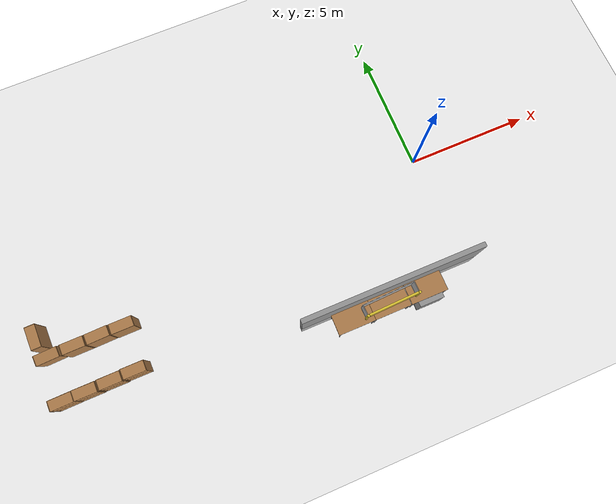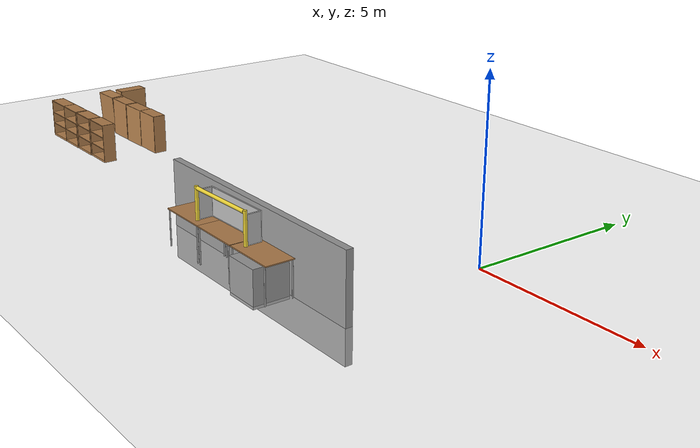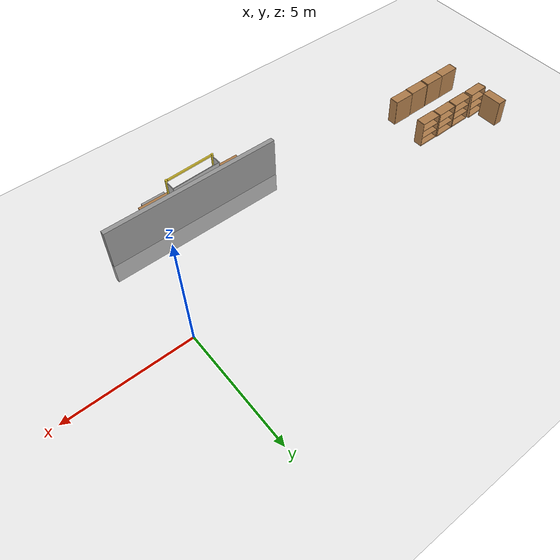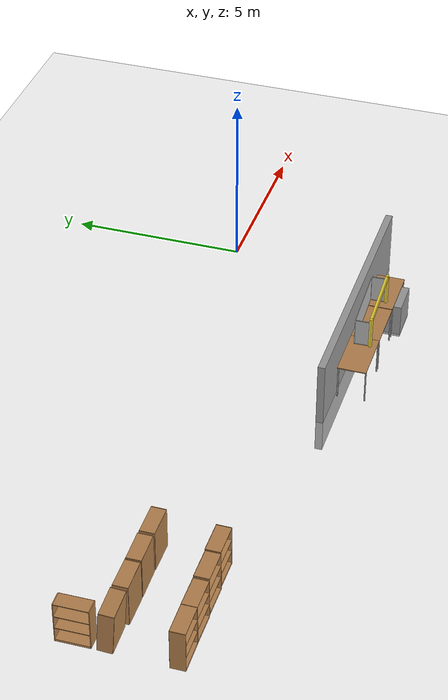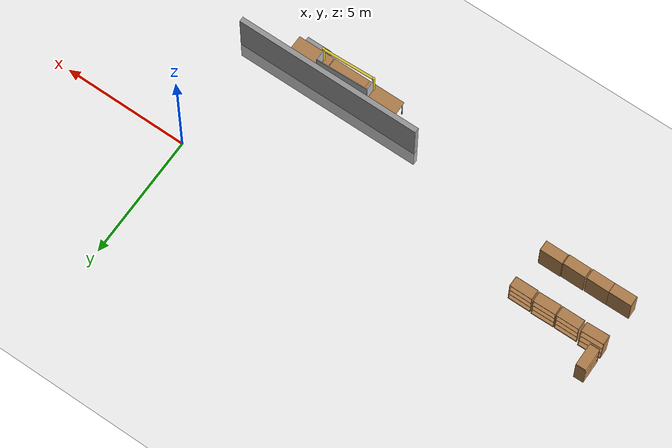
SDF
<sdf version="1.4">
 <world name="default">
  <model name="ground_plane">
   <static>1</static>
   <link name="link">
    <collision name="collision">
     <geometry><plane><normal>0 0 1</normal><size>100 100</size></plane></geometry>
     <surface><friction><ode><mu>100</mu><mu2>50</mu2></ode></friction></surface>
    </collision>
    <visual name="visual">
     <cast_shadows>0</cast_shadows>
     <geometry><plane><normal>0 0 1</normal><size>100 100</size></plane></geometry>
     <material>
      <script><uri>file://media/materials/scripts/gazebo.material</uri><name>Gazebo/Grey</name></script>
     </material>
    </visual>
    <velocity_decay><linear>0</linear><angular>0</angular></velocity_decay>
   </link>
  </model>
  <model name="bookshelf_27">
   <static>1</static>
   <link name="link">
    <inertial><mass>1</mass></inertial>
    <collision name="back">
     <pose>0 0.005 0.6 0 -0 0</pose>
     <geometry><box><size>0.9 0.01 1.2</size></box></geometry>
    </collision>
    <visual name="visual1">
     <pose>0 0.005 0.6 0 -0 0</pose>
     <geometry><box><size>0.9 0.01 1.2</size></box></geometry>
     <material>
      <script><uri>file://media/materials/scripts/gazebo.material</uri><name>Gazebo/Wood</name></script>
     </material>
    </visual>
    <collision name="left_side">
     <pose>0.45 -0.195 0.6 0 -0 0</pose>
     <geometry><box><size>0.02 0.4 1.2</size></box></geometry>
    </collision>
    <visual name="visual2">
     <pose>0.45 -0.195 0.6 0 -0 0</pose>
     <geometry><box><size>0.02 0.4 1.2</size></box></geometry>
     <material>
      <script><uri>file://media/materials/scripts/gazebo.material</uri><name>Gazebo/Wood</name></script>
     </material>
    </visual>
    <collision name="right_side">
     <pose>-0.45 -0.195 0.6 0 -0 0</pose>
     <geometry><box><size>0.02 0.4 1.2</size></box></geometry>
    </collision>
    <visual name="visual3">
     <pose>-0.45 -0.195 0.6 0 -0 0</pose>
     <geometry><box><size>0.02 0.4 1.2</size></box></geometry>
     <material>
      <script><uri>file://media/materials/scripts/gazebo.material</uri><name>Gazebo/Wood</name></script>
     </material>
    </visual>
    <collision name="bottom">
     <pose>0 -0.195 0.03 0 -0 0</pose>
     <geometry><box><size>0.88 0.4 0.06</size></box></geometry>
    </collision>
    <visual name="visual4">
     <pose>0 -0.195 0.03 0 -0 0</pose>
     <geometry><box><size>0.88 0.4 0.06</size></box></geometry>
     <material>
      <script><uri>file://media/materials/scripts/gazebo.material</uri><name>Gazebo/Wood</name></script>
     </material>
    </visual>
    <collision name="top">
     <pose>0 -0.195 1.19 0 -0 0</pose>
     <geometry><box><size>0.88 0.4 0.02</size></box></geometry>
    </collision>
    <visual name="visual5">
     <pose>0 -0.195 1.19 0 -0 0</pose>
     <geometry><box><size>0.88 0.4 0.02</size></box></geometry>
     <material>
      <script><uri>file://media/materials/scripts/gazebo.material</uri><name>Gazebo/Wood</name></script>
     </material>
    </visual>
    <collision name="low_shelf">
     <pose>0 -0.195 0.43 0 -0 0</pose>
     <geometry><box><size>0.88 0.4 0.02</size></box></geometry>
    </collision>
    <visual name="visual6">
     <pose>0 -0.195 0.43 0 -0 0</pose>
     <geometry><box><size>0.88 0.4 0.02</size></box></geometry>
     <material>
      <script><uri>file://media/materials/scripts/gazebo.material</uri><name>Gazebo/Wood</name></script>
     </material>
    </visual>
    <collision name="high_shelf">
     <pose>0 -0.195 0.8 0 -0 0</pose>
     <geometry><box><size>0.88 0.4 0.02</size></box></geometry>
    </collision>
    <visual name="visual7">
     <pose>0 -0.195 0.8 0 -0 0</pose>
     <geometry><box><size>0.88 0.4 0.02</size></box></geometry>
     <material>
      <script><uri>file://media/materials/scripts/gazebo.material</uri><name>Gazebo/Wood</name></script>
     </material>
    </visual>
    <velocity_decay><linear>0</linear><angular>0</angular></velocity_decay>
   </link>
   <pose>-15.0973 -3.47913 0 0 -0 0</pose>
  </model>
  <model name="bookshelf_29">
   <static>1</static>
   <link name="link">
    <inertial><mass>1</mass></inertial>
    <collision name="back">
     <pose>0 0.005 0.6 0 -0 0</pose>
     <geometry><box><size>0.9 0.01 1.2</size></box></geometry>
    </collision>
    <visual name="visual1">
     <pose>0 0.005 0.6 0 -0 0</pose>
     <geometry><box><size>0.9 0.01 1.2</size></box></geometry>
     <material>
      <script><uri>file://media/materials/scripts/gazebo.material</uri><name>Gazebo/Wood</name></script>
     </material>
    </visual>
    <collision name="left_side">
     <pose>0.45 -0.195 0.6 0 -0 0</pose>
     <geometry><box><size>0.02 0.4 1.2</size></box></geometry>
    </collision>
    <visual name="visual2">
     <pose>0.45 -0.195 0.6 0 -0 0</pose>
     <geometry><box><size>0.02 0.4 1.2</size></box></geometry>
     <material>
      <script><uri>file://media/materials/scripts/gazebo.material</uri><name>Gazebo/Wood</name></script>
     </material>
    </visual>
    <collision name="right_side">
     <pose>-0.45 -0.195 0.6 0 -0 0</pose>
     <geometry><box><size>0.02 0.4 1.2</size></box></geometry>
    </collision>
    <visual name="visual3">
     <pose>-0.45 -0.195 0.6 0 -0 0</pose>
     <geometry><box><size>0.02 0.4 1.2</size></box></geometry>
     <material>
      <script><uri>file://media/materials/scripts/gazebo.material</uri><name>Gazebo/Wood</name></script>
     </material>
    </visual>
    <collision name="bottom">
     <pose>0 -0.195 0.03 0 -0 0</pose>
     <geometry><box><size>0.88 0.4 0.06</size></box></geometry>
    </collision>
    <visual name="visual4">
     <pose>0 -0.195 0.03 0 -0 0</pose>
     <geometry><box><size>0.88 0.4 0.06</size></box></geometry>
     <material>
      <script><uri>file://media/materials/scripts/gazebo.material</uri><name>Gazebo/Wood</name></script>
     </material>
    </visual>
    <collision name="top">
     <pose>0 -0.195 1.19 0 -0 0</pose>
     <geometry><box><size>0.88 0.4 0.02</size></box></geometry>
    </collision>
    <visual name="visual5">
     <pose>0 -0.195 1.19 0 -0 0</pose>
     <geometry><box><size>0.88 0.4 0.02</size></box></geometry>
     <material>
      <script><uri>file://media/materials/scripts/gazebo.material</uri><name>Gazebo/Wood</name></script>
     </material>
    </visual>
    <collision name="low_shelf">
     <pose>0 -0.195 0.43 0 -0 0</pose>
     <geometry><box><size>0.88 0.4 0.02</size></box></geometry>
    </collision>
    <visual name="visual6">
     <pose>0 -0.195 0.43 0 -0 0</pose>
     <geometry><box><size>0.88 0.4 0.02</size></box></geometry>
     <material>
      <script><uri>file://media/materials/scripts/gazebo.material</uri><name>Gazebo/Wood</name></script>
     </material>
    </visual>
    <collision name="high_shelf">
     <pose>0 -0.195 0.8 0 -0 0</pose>
     <geometry><box><size>0.88 0.4 0.02</size></box></geometry>
    </collision>
    <visual name="visual7">
     <pose>0 -0.195 0.8 0 -0 0</pose>
     <geometry><box><size>0.88 0.4 0.02</size></box></geometry>
     <material>
      <script><uri>file://media/materials/scripts/gazebo.material</uri><name>Gazebo/Wood</name></script>
     </material>
    </visual>
    <velocity_decay><linear>0</linear><angular>0</angular></velocity_decay>
   </link>
   <pose>-16.0607 -1.09142 0 0 0 -1.554</pose>
  </model>
  <model name="bookshelf_30">
   <static>1</static>
   <link name="link">
    <inertial><mass>1</mass></inertial>
    <collision name="back">
     <pose>0 0.005 0.6 0 -0 0</pose>
     <geometry><box><size>0.9 0.01 1.2</size></box></geometry>
    </collision>
    <visual name="visual1">
     <pose>0 0.005 0.6 0 -0 0</pose>
     <geometry><box><size>0.9 0.01 1.2</size></box></geometry>
     <material>
      <script><uri>file://media/materials/scripts/gazebo.material</uri><name>Gazebo/Wood</name></script>
     </material>
    </visual>
    <collision name="left_side">
     <pose>0.45 -0.195 0.6 0 -0 0</pose>
     <geometry><box><size>0.02 0.4 1.2</size></box></geometry>
    </collision>
    <visual name="visual2">
     <pose>0.45 -0.195 0.6 0 -0 0</pose>
     <geometry><box><size>0.02 0.4 1.2</size></box></geometry>
     <material>
      <script><uri>file://media/materials/scripts/gazebo.material</uri><name>Gazebo/Wood</name></script>
     </material>
    </visual>
    <collision name="right_side">
     <pose>-0.45 -0.195 0.6 0 -0 0</pose>
     <geometry><box><size>0.02 0.4 1.2</size></box></geometry>
    </collision>
    <visual name="visual3">
     <pose>-0.45 -0.195 0.6 0 -0 0</pose>
     <geometry><box><size>0.02 0.4 1.2</size></box></geometry>
     <material>
      <script><uri>file://media/materials/scripts/gazebo.material</uri><name>Gazebo/Wood</name></script>
     </material>
    </visual>
    <collision name="bottom">
     <pose>0 -0.195 0.03 0 -0 0</pose>
     <geometry><box><size>0.88 0.4 0.06</size></box></geometry>
    </collision>
    <visual name="visual4">
     <pose>0 -0.195 0.03 0 -0 0</pose>
     <geometry><box><size>0.88 0.4 0.06</size></box></geometry>
     <material>
      <script><uri>file://media/materials/scripts/gazebo.material</uri><name>Gazebo/Wood</name></script>
     </material>
    </visual>
    <collision name="top">
     <pose>0 -0.195 1.19 0 -0 0</pose>
     <geometry><box><size>0.88 0.4 0.02</size></box></geometry>
    </collision>
    <visual name="visual5">
     <pose>0 -0.195 1.19 0 -0 0</pose>
     <geometry><box><size>0.88 0.4 0.02</size></box></geometry>
     <material>
      <script><uri>file://media/materials/scripts/gazebo.material</uri><name>Gazebo/Wood</name></script>
     </material>
    </visual>
    <collision name="low_shelf">
     <pose>0 -0.195 0.43 0 -0 0</pose>
     <geometry><box><size>0.88 0.4 0.02</size></box></geometry>
    </collision>
    <visual name="visual6">
     <pose>0 -0.195 0.43 0 -0 0</pose>
     <geometry><box><size>0.88 0.4 0.02</size></box></geometry>
     <material>
      <script><uri>file://media/materials/scripts/gazebo.material</uri><name>Gazebo/Wood</name></script>
     </material>
    </visual>
    <collision name="high_shelf">
     <pose>0 -0.195 0.8 0 -0 0</pose>
     <geometry><box><size>0.88 0.4 0.02</size></box></geometry>
    </collision>
    <visual name="visual7">
     <pose>0 -0.195 0.8 0 -0 0</pose>
     <geometry><box><size>0.88 0.4 0.02</size></box></geometry>
     <material>
      <script><uri>file://media/materials/scripts/gazebo.material</uri><name>Gazebo/Wood</name></script>
     </material>
    </visual>
    <velocity_decay><linear>0</linear><angular>0</angular></velocity_decay>
   </link>
   <pose>-15.9916 -2.0704 0 -0.064385 4.33681e-19 -3.10962</pose>
  </model>
  <model name="bookshelf_31">
   <static>1</static>
   <link name="link">
    <inertial><mass>1</mass></inertial>
    <collision name="back">
     <pose>0 0.005 0.6 0 -0 0</pose>
     <geometry><box><size>0.9 0.01 1.2</size></box></geometry>
    </collision>
    <visual name="visual1">
     <pose>0 0.005 0.6 0 -0 0</pose>
     <geometry><box><size>0.9 0.01 1.2</size></box></geometry>
     <material>
      <script><uri>file://media/materials/scripts/gazebo.material</uri><name>Gazebo/Wood</name></script>
     </material>
    </visual>
    <collision name="left_side">
     <pose>0.45 -0.195 0.6 0 -0 0</pose>
     <geometry><box><size>0.02 0.4 1.2</size></box></geometry>
    </collision>
    <visual name="visual2">
     <pose>0.45 -0.195 0.6 0 -0 0</pose>
     <geometry><box><size>0.02 0.4 1.2</size></box></geometry>
     <material>
      <script><uri>file://media/materials/scripts/gazebo.material</uri><name>Gazebo/Wood</name></script>
     </material>
    </visual>
    <collision name="right_side">
     <pose>-0.45 -0.195 0.6 0 -0 0</pose>
     <geometry><box><size>0.02 0.4 1.2</size></box></geometry>
    </collision>
    <visual name="visual3">
     <pose>-0.45 -0.195 0.6 0 -0 0</pose>
     <geometry><box><size>0.02 0.4 1.2</size></box></geometry>
     <material>
      <script><uri>file://media/materials/scripts/gazebo.material</uri><name>Gazebo/Wood</name></script>
     </material>
    </visual>
    <collision name="bottom">
     <pose>0 -0.195 0.03 0 -0 0</pose>
     <geometry><box><size>0.88 0.4 0.06</size></box></geometry>
    </collision>
    <visual name="visual4">
     <pose>0 -0.195 0.03 0 -0 0</pose>
     <geometry><box><size>0.88 0.4 0.06</size></box></geometry>
     <material>
      <script><uri>file://media/materials/scripts/gazebo.material</uri><name>Gazebo/Wood</name></script>
     </material>
    </visual>
    <collision name="top">
     <pose>0 -0.195 1.19 0 -0 0</pose>
     <geometry><box><size>0.88 0.4 0.02</size></box></geometry>
    </collision>
    <visual name="visual5">
     <pose>0 -0.195 1.19 0 -0 0</pose>
     <geometry><box><size>0.88 0.4 0.02</size></box></geometry>
     <material>
      <script><uri>file://media/materials/scripts/gazebo.material</uri><name>Gazebo/Wood</name></script>
     </material>
    </visual>
    <collision name="low_shelf">
     <pose>0 -0.195 0.43 0 -0 0</pose>
     <geometry><box><size>0.88 0.4 0.02</size></box></geometry>
    </collision>
    <visual name="visual6">
     <pose>0 -0.195 0.43 0 -0 0</pose>
     <geometry><box><size>0.88 0.4 0.02</size></box></geometry>
     <material>
      <script><uri>file://media/materials/scripts/gazebo.material</uri><name>Gazebo/Wood</name></script>
     </material>
    </visual>
    <collision name="high_shelf">
     <pose>0 -0.195 0.8 0 -0 0</pose>
     <geometry><box><size>0.88 0.4 0.02</size></box></geometry>
    </collision>
    <visual name="visual7">
     <pose>0 -0.195 0.8 0 -0 0</pose>
     <geometry><box><size>0.88 0.4 0.02</size></box></geometry>
     <material>
      <script><uri>file://media/materials/scripts/gazebo.material</uri><name>Gazebo/Wood</name></script>
     </material>
    </visual>
    <velocity_decay><linear>0</linear><angular>0</angular></velocity_decay>
   </link>
   <pose>-14.9992 -2.13445 0 0 0 -3.13657</pose>
  </model>
  <model name="bookshelf_32">
   <static>1</static>
   <link name="link">
    <inertial><mass>1</mass></inertial>
    <collision name="back">
     <pose>0 0.005 0.6 0 -0 0</pose>
     <geometry><box><size>0.9 0.01 1.2</size></box></geometry>
    </collision>
    <visual name="visual1">
     <pose>0 0.005 0.6 0 -0 0</pose>
     <geometry><box><size>0.9 0.01 1.2</size></box></geometry>
     <material>
      <script><uri>file://media/materials/scripts/gazebo.material</uri><name>Gazebo/Wood</name></script>
     </material>
    </visual>
    <collision name="left_side">
     <pose>0.45 -0.195 0.6 0 -0 0</pose>
     <geometry><box><size>0.02 0.4 1.2</size></box></geometry>
    </collision>
    <visual name="visual2">
     <pose>0.45 -0.195 0.6 0 -0 0</pose>
     <geometry><box><size>0.02 0.4 1.2</size></box></geometry>
     <material>
      <script><uri>file://media/materials/scripts/gazebo.material</uri><name>Gazebo/Wood</name></script>
     </material>
    </visual>
    <collision name="right_side">
     <pose>-0.45 -0.195 0.6 0 -0 0</pose>
     <geometry><box><size>0.02 0.4 1.2</size></box></geometry>
    </collision>
    <visual name="visual3">
     <pose>-0.45 -0.195 0.6 0 -0 0</pose>
     <geometry><box><size>0.02 0.4 1.2</size></box></geometry>
     <material>
      <script><uri>file://media/materials/scripts/gazebo.material</uri><name>Gazebo/Wood</name></script>
     </material>
    </visual>
    <collision name="bottom">
     <pose>0 -0.195 0.03 0 -0 0</pose>
     <geometry><box><size>0.88 0.4 0.06</size></box></geometry>
    </collision>
    <visual name="visual4">
     <pose>0 -0.195 0.03 0 -0 0</pose>
     <geometry><box><size>0.88 0.4 0.06</size></box></geometry>
     <material>
      <script><uri>file://media/materials/scripts/gazebo.material</uri><name>Gazebo/Wood</name></script>
     </material>
    </visual>
    <collision name="top">
     <pose>0 -0.195 1.19 0 -0 0</pose>
     <geometry><box><size>0.88 0.4 0.02</size></box></geometry>
    </collision>
    <visual name="visual5">
     <pose>0 -0.195 1.19 0 -0 0</pose>
     <geometry><box><size>0.88 0.4 0.02</size></box></geometry>
     <material>
      <script><uri>file://media/materials/scripts/gazebo.material</uri><name>Gazebo/Wood</name></script>
     </material>
    </visual>
    <collision name="low_shelf">
     <pose>0 -0.195 0.43 0 -0 0</pose>
     <geometry><box><size>0.88 0.4 0.02</size></box></geometry>
    </collision>
    <visual name="visual6">
     <pose>0 -0.195 0.43 0 -0 0</pose>
     <geometry><box><size>0.88 0.4 0.02</size></box></geometry>
     <material>
      <script><uri>file://media/materials/scripts/gazebo.material</uri><name>Gazebo/Wood</name></script>
     </material>
    </visual>
    <collision name="high_shelf">
     <pose>0 -0.195 0.8 0 -0 0</pose>
     <geometry><box><size>0.88 0.4 0.02</size></box></geometry>
    </collision>
    <visual name="visual7">
     <pose>0 -0.195 0.8 0 -0 0</pose>
     <geometry><box><size>0.88 0.4 0.02</size></box></geometry>
     <material>
      <script><uri>file://media/materials/scripts/gazebo.material</uri><name>Gazebo/Wood</name></script>
     </material>
    </visual>
    <velocity_decay><linear>0</linear><angular>0</angular></velocity_decay>
   </link>
   <pose>-14.0482 -2.12363 0 0 0 -3.12055</pose>
  </model>
  <model name="bookshelf_33">
   <static>1</static>
   <link name="link">
    <inertial><mass>1</mass></inertial>
    <collision name="back">
     <pose>0 0.005 0.6 0 -0 0</pose>
     <geometry><box><size>0.9 0.01 1.2</size></box></geometry>
    </collision>
    <visual name="visual1">
     <pose>0 0.005 0.6 0 -0 0</pose>
     <geometry><box><size>0.9 0.01 1.2</size></box></geometry>
     <material>
      <script><uri>file://media/materials/scripts/gazebo.material</uri><name>Gazebo/Wood</name></script>
     </material>
    </visual>
    <collision name="left_side">
     <pose>0.45 -0.195 0.6 0 -0 0</pose>
     <geometry><box><size>0.02 0.4 1.2</size></box></geometry>
    </collision>
    <visual name="visual2">
     <pose>0.45 -0.195 0.6 0 -0 0</pose>
     <geometry><box><size>0.02 0.4 1.2</size></box></geometry>
     <material>
      <script><uri>file://media/materials/scripts/gazebo.material</uri><name>Gazebo/Wood</name></script>
     </material>
    </visual>
    <collision name="right_side">
     <pose>-0.45 -0.195 0.6 0 -0 0</pose>
     <geometry><box><size>0.02 0.4 1.2</size></box></geometry>
    </collision>
    <visual name="visual3">
     <pose>-0.45 -0.195 0.6 0 -0 0</pose>
     <geometry><box><size>0.02 0.4 1.2</size></box></geometry>
     <material>
      <script><uri>file://media/materials/scripts/gazebo.material</uri><name>Gazebo/Wood</name></script>
     </material>
    </visual>
    <collision name="bottom">
     <pose>0 -0.195 0.03 0 -0 0</pose>
     <geometry><box><size>0.88 0.4 0.06</size></box></geometry>
    </collision>
    <visual name="visual4">
     <pose>0 -0.195 0.03 0 -0 0</pose>
     <geometry><box><size>0.88 0.4 0.06</size></box></geometry>
     <material>
      <script><uri>file://media/materials/scripts/gazebo.material</uri><name>Gazebo/Wood</name></script>
     </material>
    </visual>
    <collision name="top">
     <pose>0 -0.195 1.19 0 -0 0</pose>
     <geometry><box><size>0.88 0.4 0.02</size></box></geometry>
    </collision>
    <visual name="visual5">
     <pose>0 -0.195 1.19 0 -0 0</pose>
     <geometry><box><size>0.88 0.4 0.02</size></box></geometry>
     <material>
      <script><uri>file://media/materials/scripts/gazebo.material</uri><name>Gazebo/Wood</name></script>
     </material>
    </visual>
    <collision name="low_shelf">
     <pose>0 -0.195 0.43 0 -0 0</pose>
     <geometry><box><size>0.88 0.4 0.02</size></box></geometry>
    </collision>
    <visual name="visual6">
     <pose>0 -0.195 0.43 0 -0 0</pose>
     <geometry><box><size>0.88 0.4 0.02</size></box></geometry>
     <material>
      <script><uri>file://media/materials/scripts/gazebo.material</uri><name>Gazebo/Wood</name></script>
     </material>
    </visual>
    <collision name="high_shelf">
     <pose>0 -0.195 0.8 0 -0 0</pose>
     <geometry><box><size>0.88 0.4 0.02</size></box></geometry>
    </collision>
    <visual name="visual7">
     <pose>0 -0.195 0.8 0 -0 0</pose>
     <geometry><box><size>0.88 0.4 0.02</size></box></geometry>
     <material>
      <script><uri>file://media/materials/scripts/gazebo.material</uri><name>Gazebo/Wood</name></script>
     </material>
    </visual>
    <velocity_decay><linear>0</linear><angular>0</angular></velocity_decay>
   </link>
   <pose>-13.0936 -2.12751 0.018166 0 0 -3.13811</pose>
  </model>
  <model name="bookshelf_34">
   <static>1</static>
   <link name="link">
    <inertial><mass>1</mass></inertial>
    <collision name="back">
     <pose>0 0.005 0.6 0 -0 0</pose>
     <geometry><box><size>0.9 0.01 1.2</size></box></geometry>
    </collision>
    <visual name="visual1">
     <pose>0 0.005 0.6 0 -0 0</pose>
     <geometry><box><size>0.9 0.01 1.2</size></box></geometry>
     <material>
      <script><uri>file://media/materials/scripts/gazebo.material</uri><name>Gazebo/Wood</name></script>
     </material>
    </visual>
    <collision name="left_side">
     <pose>0.45 -0.195 0.6 0 -0 0</pose>
     <geometry><box><size>0.02 0.4 1.2</size></box></geometry>
    </collision>
    <visual name="visual2">
     <pose>0.45 -0.195 0.6 0 -0 0</pose>
     <geometry><box><size>0.02 0.4 1.2</size></box></geometry>
     <material>
      <script><uri>file://media/materials/scripts/gazebo.material</uri><name>Gazebo/Wood</name></script>
     </material>
    </visual>
    <collision name="right_side">
     <pose>-0.45 -0.195 0.6 0 -0 0</pose>
     <geometry><box><size>0.02 0.4 1.2</size></box></geometry>
    </collision>
    <visual name="visual3">
     <pose>-0.45 -0.195 0.6 0 -0 0</pose>
     <geometry><box><size>0.02 0.4 1.2</size></box></geometry>
     <material>
      <script><uri>file://media/materials/scripts/gazebo.material</uri><name>Gazebo/Wood</name></script>
     </material>
    </visual>
    <collision name="bottom">
     <pose>0 -0.195 0.03 0 -0 0</pose>
     <geometry><box><size>0.88 0.4 0.06</size></box></geometry>
    </collision>
    <visual name="visual4">
     <pose>0 -0.195 0.03 0 -0 0</pose>
     <geometry><box><size>0.88 0.4 0.06</size></box></geometry>
     <material>
      <script><uri>file://media/materials/scripts/gazebo.material</uri><name>Gazebo/Wood</name></script>
     </material>
    </visual>
    <collision name="top">
     <pose>0 -0.195 1.19 0 -0 0</pose>
     <geometry><box><size>0.88 0.4 0.02</size></box></geometry>
    </collision>
    <visual name="visual5">
     <pose>0 -0.195 1.19 0 -0 0</pose>
     <geometry><box><size>0.88 0.4 0.02</size></box></geometry>
     <material>
      <script><uri>file://media/materials/scripts/gazebo.material</uri><name>Gazebo/Wood</name></script>
     </material>
    </visual>
    <collision name="low_shelf">
     <pose>0 -0.195 0.43 0 -0 0</pose>
     <geometry><box><size>0.88 0.4 0.02</size></box></geometry>
    </collision>
    <visual name="visual6">
     <pose>0 -0.195 0.43 0 -0 0</pose>
     <geometry><box><size>0.88 0.4 0.02</size></box></geometry>
     <material>
      <script><uri>file://media/materials/scripts/gazebo.material</uri><name>Gazebo/Wood</name></script>
     </material>
    </visual>
    <collision name="high_shelf">
     <pose>0 -0.195 0.8 0 -0 0</pose>
     <geometry><box><size>0.88 0.4 0.02</size></box></geometry>
    </collision>
    <visual name="visual7">
     <pose>0 -0.195 0.8 0 -0 0</pose>
     <geometry><box><size>0.88 0.4 0.02</size></box></geometry>
     <material>
      <script><uri>file://media/materials/scripts/gazebo.material</uri><name>Gazebo/Wood</name></script>
     </material>
    </visual>
    <velocity_decay><linear>0</linear><angular>0</angular></velocity_decay>
   </link>
   <pose>-15.9976 -3.48806 0 0 -0 0.012913</pose>
  </model>
  <model name="bookshelf_35">
   <static>1</static>
   <link name="link">
    <inertial><mass>1</mass></inertial>
    <collision name="back">
     <pose>0 0.005 0.6 0 -0 0</pose>
     <geometry><box><size>0.9 0.01 1.2</size></box></geometry>
    </collision>
    <visual name="visual1">
     <pose>0 0.005 0.6 0 -0 0</pose>
     <geometry><box><size>0.9 0.01 1.2</size></box></geometry>
     <material>
      <script><uri>file://media/materials/scripts/gazebo.material</uri><name>Gazebo/Wood</name></script>
     </material>
    </visual>
    <collision name="left_side">
     <pose>0.45 -0.195 0.6 0 -0 0</pose>
     <geometry><box><size>0.02 0.4 1.2</size></box></geometry>
    </collision>
    <visual name="visual2">
     <pose>0.45 -0.195 0.6 0 -0 0</pose>
     <geometry><box><size>0.02 0.4 1.2</size></box></geometry>
     <material>
      <script><uri>file://media/materials/scripts/gazebo.material</uri><name>Gazebo/Wood</name></script>
     </material>
    </visual>
    <collision name="right_side">
     <pose>-0.45 -0.195 0.6 0 -0 0</pose>
     <geometry><box><size>0.02 0.4 1.2</size></box></geometry>
    </collision>
    <visual name="visual3">
     <pose>-0.45 -0.195 0.6 0 -0 0</pose>
     <geometry><box><size>0.02 0.4 1.2</size></box></geometry>
     <material>
      <script><uri>file://media/materials/scripts/gazebo.material</uri><name>Gazebo/Wood</name></script>
     </material>
    </visual>
    <collision name="bottom">
     <pose>0 -0.195 0.03 0 -0 0</pose>
     <geometry><box><size>0.88 0.4 0.06</size></box></geometry>
    </collision>
    <visual name="visual4">
     <pose>0 -0.195 0.03 0 -0 0</pose>
     <geometry><box><size>0.88 0.4 0.06</size></box></geometry>
     <material>
      <script><uri>file://media/materials/scripts/gazebo.material</uri><name>Gazebo/Wood</name></script>
     </material>
    </visual>
    <collision name="top">
     <pose>0 -0.195 1.19 0 -0 0</pose>
     <geometry><box><size>0.88 0.4 0.02</size></box></geometry>
    </collision>
    <visual name="visual5">
     <pose>0 -0.195 1.19 0 -0 0</pose>
     <geometry><box><size>0.88 0.4 0.02</size></box></geometry>
     <material>
      <script><uri>file://media/materials/scripts/gazebo.material</uri><name>Gazebo/Wood</name></script>
     </material>
    </visual>
    <collision name="low_shelf">
     <pose>0 -0.195 0.43 0 -0 0</pose>
     <geometry><box><size>0.88 0.4 0.02</size></box></geometry>
    </collision>
    <visual name="visual6">
     <pose>0 -0.195 0.43 0 -0 0</pose>
     <geometry><box><size>0.88 0.4 0.02</size></box></geometry>
     <material>
      <script><uri>file://media/materials/scripts/gazebo.material</uri><name>Gazebo/Wood</name></script>
     </material>
    </visual>
    <collision name="high_shelf">
     <pose>0 -0.195 0.8 0 -0 0</pose>
     <geometry><box><size>0.88 0.4 0.02</size></box></geometry>
    </collision>
    <visual name="visual7">
     <pose>0 -0.195 0.8 0 -0 0</pose>
     <geometry><box><size>0.88 0.4 0.02</size></box></geometry>
     <material>
      <script><uri>file://media/materials/scripts/gazebo.material</uri><name>Gazebo/Wood</name></script>
     </material>
    </visual>
    <velocity_decay><linear>0</linear><angular>0</angular></velocity_decay>
   </link>
   <pose>-14.1422 -3.46533 0 0 -0 0</pose>
  </model>
  <model name="bookshelf_36">
   <static>1</static>
   <link name="link">
    <inertial><mass>1</mass></inertial>
    <collision name="back">
     <pose>0 0.005 0.6 0 -0 0</pose>
     <geometry><box><size>0.9 0.01 1.2</size></box></geometry>
    </collision>
    <visual name="visual1">
     <pose>0 0.005 0.6 0 -0 0</pose>
     <geometry><box><size>0.9 0.01 1.2</size></box></geometry>
     <material>
      <script><uri>file://media/materials/scripts/gazebo.material</uri><name>Gazebo/Wood</name></script>
     </material>
    </visual>
    <collision name="left_side">
     <pose>0.45 -0.195 0.6 0 -0 0</pose>
     <geometry><box><size>0.02 0.4 1.2</size></box></geometry>
    </collision>
    <visual name="visual2">
     <pose>0.45 -0.195 0.6 0 -0 0</pose>
     <geometry><box><size>0.02 0.4 1.2</size></box></geometry>
     <material>
      <script><uri>file://media/materials/scripts/gazebo.material</uri><name>Gazebo/Wood</name></script>
     </material>
    </visual>
    <collision name="right_side">
     <pose>-0.45 -0.195 0.6 0 -0 0</pose>
     <geometry><box><size>0.02 0.4 1.2</size></box></geometry>
    </collision>
    <visual name="visual3">
     <pose>-0.45 -0.195 0.6 0 -0 0</pose>
     <geometry><box><size>0.02 0.4 1.2</size></box></geometry>
     <material>
      <script><uri>file://media/materials/scripts/gazebo.material</uri><name>Gazebo/Wood</name></script>
     </material>
    </visual>
    <collision name="bottom">
     <pose>0 -0.195 0.03 0 -0 0</pose>
     <geometry><box><size>0.88 0.4 0.06</size></box></geometry>
    </collision>
    <visual name="visual4">
     <pose>0 -0.195 0.03 0 -0 0</pose>
     <geometry><box><size>0.88 0.4 0.06</size></box></geometry>
     <material>
      <script><uri>file://media/materials/scripts/gazebo.material</uri><name>Gazebo/Wood</name></script>
     </material>
    </visual>
    <collision name="top">
     <pose>0 -0.195 1.19 0 -0 0</pose>
     <geometry><box><size>0.88 0.4 0.02</size></box></geometry>
    </collision>
    <visual name="visual5">
     <pose>0 -0.195 1.19 0 -0 0</pose>
     <geometry><box><size>0.88 0.4 0.02</size></box></geometry>
     <material>
      <script><uri>file://media/materials/scripts/gazebo.material</uri><name>Gazebo/Wood</name></script>
     </material>
    </visual>
    <collision name="low_shelf">
     <pose>0 -0.195 0.43 0 -0 0</pose>
     <geometry><box><size>0.88 0.4 0.02</size></box></geometry>
    </collision>
    <visual name="visual6">
     <pose>0 -0.195 0.43 0 -0 0</pose>
     <geometry><box><size>0.88 0.4 0.02</size></box></geometry>
     <material>
      <script><uri>file://media/materials/scripts/gazebo.material</uri><name>Gazebo/Wood</name></script>
     </material>
    </visual>
    <collision name="high_shelf">
     <pose>0 -0.195 0.8 0 -0 0</pose>
     <geometry><box><size>0.88 0.4 0.02</size></box></geometry>
    </collision>
    <visual name="visual7">
     <pose>0 -0.195 0.8 0 -0 0</pose>
     <geometry><box><size>0.88 0.4 0.02</size></box></geometry>
     <material>
      <script><uri>file://media/materials/scripts/gazebo.material</uri><name>Gazebo/Wood</name></script>
     </material>
    </visual>
    <velocity_decay><linear>0</linear><angular>0</angular></velocity_decay>
   </link>
   <pose>-13.2104 -3.44347 0 0 -0 0</pose>
  </model>
  <model name="grey_wall_2">
   <static>1</static>
   <link name="link">
    <pose>0 0 1.4 0 -0 0</pose>
    <collision name="collision"><geometry><box><size>7.5 0.2 2.8</size></box></geometry></collision>
    <visual name="visual">
     <cast_shadows>0</cast_shadows>
     <geometry><box><size>7.5 0.2 2.8</size></box></geometry>
     <material>
      <script>
       <uri>model://grey_wall/materials/scripts</uri>
       <uri>model://grey_wall/materials/textures</uri>
       <name>vrc/grey_wall</name>
      </script>
     </material>
    </visual>
    <velocity_decay><linear>0</linear><angular>0</angular></velocity_decay>
   </link>
   <pose>-3.15807 -4.45313 -0.955429 0 -0 0</pose>
  </model>
  <model name="table_3">
   <static>1</static>
   <link name="link">
    <collision name="surface">
     <pose>0 0 1 0 -0 0</pose>
     <geometry><box><size>1.5 0.8 0.03</size></box></geometry>
     <surface><friction><ode><mu>0.6</mu><mu2>0.6</mu2></ode></friction></surface>
    </collision>
    <visual name="visual1">
     <pose>0 0 1 0 -0 0</pose>
     <geometry><box><size>1.5 0.8 0.03</size></box></geometry>
     <material>
      <script><uri>file://media/materials/scripts/gazebo.material</uri><name>Gazebo/Wood</name></script>
     </material>
    </visual>
    <collision name="front_left_leg">
     <pose>0.68 0.38 0.5 0 -0 0</pose>
     <geometry><cylinder><radius>0.02</radius><length>1</length></cylinder></geometry>
    </collision>
    <visual name="front_left_leg">
     <pose>0.68 0.38 0.5 0 -0 0</pose>
     <geometry><cylinder><radius>0.02</radius><length>1</length></cylinder></geometry>
     <material>
      <script><uri>file://media/materials/scripts/gazebo.material</uri><name>Gazebo/Grey</name></script>
     </material>
    </visual>
    <collision name="front_right_leg">
     <pose>0.68 -0.38 0.5 0 -0 0</pose>
     <geometry><cylinder><radius>0.02</radius><length>1</length></cylinder></geometry>
    </collision>
    <visual name="front_right_leg">
     <pose>0.68 -0.38 0.5 0 -0 0</pose>
     <geometry><cylinder><radius>0.02</radius><length>1</length></cylinder></geometry>
     <material>
      <script><uri>file://media/materials/scripts/gazebo.material</uri><name>Gazebo/Grey</name></script>
     </material>
    </visual>
    <collision name="back_right_leg">
     <pose>-0.68 -0.38 0.5 0 -0 0</pose>
     <geometry><cylinder><radius>0.02</radius><length>1</length></cylinder></geometry>
    </collision>
    <visual name="back_right_leg">
     <pose>-0.68 -0.38 0.5 0 -0 0</pose>
     <geometry><cylinder><radius>0.02</radius><length>1</length></cylinder></geometry>
     <material>
      <script><uri>file://media/materials/scripts/gazebo.material</uri><name>Gazebo/Grey</name></script>
     </material>
    </visual>
    <collision name="back_left_leg">
     <pose>-0.68 0.38 0.5 0 -0 0</pose>
     <geometry><cylinder><radius>0.02</radius><length>1</length></cylinder></geometry>
    </collision>
    <visual name="back_left_leg">
     <pose>-0.68 0.38 0.5 0 -0 0</pose>
     <geometry><cylinder><radius>0.02</radius><length>1</length></cylinder></geometry>
     <material>
      <script><uri>file://media/materials/scripts/gazebo.material</uri><name>Gazebo/Grey</name></script>
     </material>
    </visual>
    <velocity_decay><linear>0</linear><angular>0</angular></velocity_decay>
   </link>
   <pose>-5 -5 0 0 -0 0</pose>
  </model>
  <model name="table_4">
   <static>1</static>
   <link name="link">
    <collision name="surface">
     <pose>0 0 1 0 -0 0</pose>
     <geometry><box><size>1.5 0.8 0.03</size></box></geometry>
     <surface><friction><ode><mu>0.6</mu><mu2>0.6</mu2></ode></friction></surface>
    </collision>
    <visual name="visual1">
     <pose>0 0 1 0 -0 0</pose>
     <geometry><box><size>1.5 0.8 0.03</size></box></geometry>
     <material>
      <script><uri>file://media/materials/scripts/gazebo.material</uri><name>Gazebo/Wood</name></script>
     </material>
    </visual>
    <collision name="front_left_leg">
     <pose>0.68 0.38 0.5 0 -0 0</pose>
     <geometry><cylinder><radius>0.02</radius><length>1</length></cylinder></geometry>
    </collision>
    <visual name="front_left_leg">
     <pose>0.68 0.38 0.5 0 -0 0</pose>
     <geometry><cylinder><radius>0.02</radius><length>1</length></cylinder></geometry>
     <material>
      <script><uri>file://media/materials/scripts/gazebo.material</uri><name>Gazebo/Grey</name></script>
     </material>
    </visual>
    <collision name="front_right_leg">
     <pose>0.68 -0.38 0.5 0 -0 0</pose>
     <geometry><cylinder><radius>0.02</radius><length>1</length></cylinder></geometry>
    </collision>
    <visual name="front_right_leg">
     <pose>0.68 -0.38 0.5 0 -0 0</pose>
     <geometry><cylinder><radius>0.02</radius><length>1</length></cylinder></geometry>
     <material>
      <script><uri>file://media/materials/scripts/gazebo.material</uri><name>Gazebo/Grey</name></script>
     </material>
    </visual>
    <collision name="back_right_leg">
     <pose>-0.68 -0.38 0.5 0 -0 0</pose>
     <geometry><cylinder><radius>0.02</radius><length>1</length></cylinder></geometry>
    </collision>
    <visual name="back_right_leg">
     <pose>-0.68 -0.38 0.5 0 -0 0</pose>
     <geometry><cylinder><radius>0.02</radius><length>1</length></cylinder></geometry>
     <material>
      <script><uri>file://media/materials/scripts/gazebo.material</uri><name>Gazebo/Grey</name></script>
     </material>
    </visual>
    <collision name="back_left_leg">
     <pose>-0.68 0.38 0.5 0 -0 0</pose>
     <geometry><cylinder><radius>0.02</radius><length>1</length></cylinder></geometry>
    </collision>
    <visual name="back_left_leg">
     <pose>-0.68 0.38 0.5 0 -0 0</pose>
     <geometry><cylinder><radius>0.02</radius><length>1</length></cylinder></geometry>
     <material>
      <script><uri>file://media/materials/scripts/gazebo.material</uri><name>Gazebo/Grey</name></script>
     </material>
    </visual>
    <velocity_decay><linear>0</linear><angular>0</angular></velocity_decay>
   </link>
   <pose>-3.52515 -5 0 0 -0 0</pose>
  </model>
  <model name="table_5">
   <static>1</static>
   <link name="link">
    <collision name="surface">
     <pose>0 0 1 0 -0 0</pose>
     <geometry><box><size>1.5 0.8 0.03</size></box></geometry>
     <surface><friction><ode><mu>0.6</mu><mu2>0.6</mu2></ode></friction></surface>
    </collision>
    <visual name="visual1">
     <pose>0 0 1 0 -0 0</pose>
     <geometry><box><size>1.5 0.8 0.03</size></box></geometry>
     <material>
      <script><uri>file://media/materials/scripts/gazebo.material</uri><name>Gazebo/Wood</name></script>
     </material>
    </visual>
    <collision name="front_left_leg">
     <pose>0.68 0.38 0.5 0 -0 0</pose>
     <geometry><cylinder><radius>0.02</radius><length>1</length></cylinder></geometry>
    </collision>
    <visual name="front_left_leg">
     <pose>0.68 0.38 0.5 0 -0 0</pose>
     <geometry><cylinder><radius>0.02</radius><length>1</length></cylinder></geometry>
     <material>
      <script><uri>file://media/materials/scripts/gazebo.material</uri><name>Gazebo/Grey</name></script>
     </material>
    </visual>
    <collision name="front_right_leg">
     <pose>0.68 -0.38 0.5 0 -0 0</pose>
     <geometry><cylinder><radius>0.02</radius><length>1</length></cylinder></geometry>
    </collision>
    <visual name="front_right_leg">
     <pose>0.68 -0.38 0.5 0 -0 0</pose>
     <geometry><cylinder><radius>0.02</radius><length>1</length></cylinder></geometry>
     <material>
      <script><uri>file://media/materials/scripts/gazebo.material</uri><name>Gazebo/Grey</name></script>
     </material>
    </visual>
    <collision name="back_right_leg">
     <pose>-0.68 -0.38 0.5 0 -0 0</pose>
     <geometry><cylinder><radius>0.02</radius><length>1</length></cylinder></geometry>
    </collision>
    <visual name="back_right_leg">
     <pose>-0.68 -0.38 0.5 0 -0 0</pose>
     <geometry><cylinder><radius>0.02</radius><length>1</length></cylinder></geometry>
     <material>
      <script><uri>file://media/materials/scripts/gazebo.material</uri><name>Gazebo/Grey</name></script>
     </material>
    </visual>
    <collision name="back_left_leg">
     <pose>-0.68 0.38 0.5 0 -0 0</pose>
     <geometry><cylinder><radius>0.02</radius><length>1</length></cylinder></geometry>
    </collision>
    <visual name="back_left_leg">
     <pose>-0.68 0.38 0.5 0 -0 0</pose>
     <geometry><cylinder><radius>0.02</radius><length>1</length></cylinder></geometry>
     <material>
      <script><uri>file://media/materials/scripts/gazebo.material</uri><name>Gazebo/Grey</name></script>
     </material>
    </visual>
    <velocity_decay><linear>0</linear><angular>0</angular></velocity_decay>
   </link>
   <pose>-2 -5 0 0 -0 0</pose>
  </model>
  <model name="unit_box_4">
   <pose>-1.97753 -5.098 0.409621 0 -0 0.000955</pose>
   <link name="link">
    <inertial>
     <mass>1</mass>
     <inertia><ixx>1</ixx><ixy>0</ixy><ixz>0</ixz><iyy>1</iyy><iyz>0</iyz><izz>1</izz></inertia>
    </inertial>
    <collision name="collision"><geometry><box><size>1 1 0.819242</size></box></geometry></collision>
    <visual name="visual">
     <geometry><box><size>1 1 1</size></box></geometry>
     <material>
      <script><uri>file://media/materials/scripts/gazebo.material</uri><name>Gazebo/Grey</name></script>
     </material>
    </visual>
    <velocity_decay><linear>0</linear><angular>0</angular></velocity_decay>
   </link>
   <static>0</static>
  </model>
  <model name="RoboCup 3D Simulator Goal">
   <static>1</static>
   <link name="left_post">
    <pose>0 1.05 0.45 0 -0 0</pose>
    <collision name="collision">
     <geometry><cylinder><radius>0.05</radius><length>0.9</length></cylinder></geometry>
    </collision>
    <visual name="visual">
     <geometry><cylinder><radius>0.05</radius><length>0.9</length></cylinder></geometry>
     <material>
      <script><uri>file://media/materials/scripts/gazebo.material</uri><name>Gazebo/ZincYellow</name></script>
     </material>
    </visual>
    <velocity_decay><linear>0</linear><angular>0</angular></velocity_decay>
   </link>
   <link name="left_support_horiz_lower">
    <pose>0.24 1.05 0.01 0 -0 0</pose>
    <collision name="collision"><geometry><box><size>0.38 0.02 0.02</size></box></geometry></collision>
    <visual name="visual">
     <geometry><box><size>0.38 0.02 0.02</size></box></geometry>
     <material>
      <script><uri>file://media/materials/scripts/gazebo.material</uri><name>Gazebo/White</name></script>
     </material>
    </visual>
    <velocity_decay><linear>0</linear><angular>0</angular></velocity_decay>
   </link>
   <link name="left_support_horiz_upper">
    <pose>0.24 1.05 0.79 0 -0 0</pose>
    <collision name="collision"><geometry><box><size>0.38 0.02 0.02</size></box></geometry></collision>
    <visual name="visual">
     <geometry><box><size>0.38 0.02 0.02</size></box></geometry>
     <material>
      <script><uri>file://media/materials/scripts/gazebo.material</uri><name>Gazebo/White</name></script>
     </material>
    </visual>
    <velocity_decay><linear>0</linear><angular>0</angular></velocity_decay>
   </link>
   <link name="left_support_vertical">
    <pose>0.44 1.05 0.4 3.14159 1.57079 3.14159</pose>
    <collision name="collision"><geometry><box><size>0.8 0.02 0.02</size></box></geometry></collision>
    <visual name="visual">
     <geometry><box><size>0.8 0.02 0.02</size></box></geometry>
     <material>
      <script><uri>file://media/materials/scripts/gazebo.material</uri><name>Gazebo/White</name></script>
     </material>
    </visual>
    <velocity_decay><linear>0</linear><angular>0</angular></velocity_decay>
   </link>
   <link name="right_support_horiz_lower">
    <pose>0.24 -1.05 0.01 0 -0 0</pose>
    <collision name="collision"><geometry><box><size>0.38 0.02 0.02</size></box></geometry></collision>
    <visual name="visual">
     <geometry><box><size>0.38 0.02 0.02</size></box></geometry>
     <material>
      <script><uri>file://media/materials/scripts/gazebo.material</uri><name>Gazebo/White</name></script>
     </material>
    </visual>
    <velocity_decay><linear>0</linear><angular>0</angular></velocity_decay>
   </link>
   <link name="right_support_horiz_upper">
    <pose>0.24 -1.05 0.79 0 -0 0</pose>
    <collision name="collision"><geometry><box><size>0.38 0.02 0.02</size></box></geometry></collision>
    <visual name="visual">
     <geometry><box><size>0.38 0.02 0.02</size></box></geometry>
     <material>
      <script><uri>file://media/materials/scripts/gazebo.material</uri><name>Gazebo/White</name></script>
     </material>
    </visual>
    <velocity_decay><linear>0</linear><angular>0</angular></velocity_decay>
   </link>
   <link name="right_support_vertical">
    <pose>0.44 -1.05 0.4 3.14159 1.57079 3.14159</pose>
    <collision name="collision"><geometry><box><size>0.8 0.02 0.02</size></box></geometry></collision>
    <visual name="visual">
     <geometry><box><size>0.8 0.02 0.02</size></box></geometry>
     <material>
      <script><uri>file://media/materials/scripts/gazebo.material</uri><name>Gazebo/White</name></script>
     </material>
    </visual>
    <velocity_decay><linear>0</linear><angular>0</angular></velocity_decay>
   </link>
   <link name="center_support_horiz_lower">
    <pose>0.44 0 0.01 3.14159 1.57079 3.14159</pose>
    <collision name="collision"><geometry><box><size>0.02 2.08 0.02</size></box></geometry></collision>
    <visual name="visual">
     <geometry><box><size>0.02 2.08 0.02</size></box></geometry>
     <material>
      <script><uri>file://media/materials/scripts/gazebo.material</uri><name>Gazebo/White</name></script>
     </material>
    </visual>
    <velocity_decay><linear>0</linear><angular>0</angular></velocity_decay>
   </link>
   <link name="center_support_horiz_upper">
    <pose>0.44 0 0.79 3.14159 1.57079 3.14159</pose>
    <collision name="collision"><geometry><box><size>0.02 2.08 0.02</size></box></geometry></collision>
    <visual name="visual">
     <geometry><box><size>0.02 2.08 0.02</size></box></geometry>
     <material>
      <script><uri>file://media/materials/scripts/gazebo.material</uri><name>Gazebo/White</name></script>
     </material>
    </visual>
    <velocity_decay><linear>0</linear><angular>0</angular></velocity_decay>
   </link>
   <link name="right_post">
    <pose>0 -1.05 0.45 0 -0 0</pose>
    <collision name="collision">
     <geometry><cylinder><radius>0.05</radius><length>0.9</length></cylinder></geometry>
    </collision>
    <visual name="visual">
     <geometry><cylinder><radius>0.05</radius><length>0.9</length></cylinder></geometry>
     <material>
      <script><uri>file://media/materials/scripts/gazebo.material</uri><name>Gazebo/ZincYellow</name></script>
     </material>
    </visual>
    <velocity_decay><linear>0</linear><angular>0</angular></velocity_decay>
   </link>
   <link name="crossbar">
    <pose>0 0 0.85 1.57 1.57 1.39418e-13</pose>
    <collision name="collision">
     <geometry><cylinder><radius>0.05</radius><length>2</length></cylinder></geometry>
    </collision>
    <visual name="visual">
     <geometry><cylinder><radius>0.05</radius><length>2</length></cylinder></geometry>
     <material>
      <script><uri>file://media/materials/scripts/gazebo.material</uri><name>Gazebo/ZincYellow</name></script>
     </material>
    </visual>
    <velocity_decay><linear>0</linear><angular>0</angular></velocity_decay>
   </link>
   <link name="center_net">
    <pose>0.44 0 0.4 0 -0 0</pose>
    <collision name="collision"><geometry><box><size>0.01 2.1 0.8</size></box></geometry></collision>
    <visual name="visual">
     <geometry><box><size>0.01 2.1 0.8</size></box></geometry>
     <material>
      <script>
       <uri>model://robocup09_spl_field/materials/scripts/</uri>
       <uri>model://robocup09_spl_field/materials/textures/</uri>
       <name>RoboCup/Net</name>
      </script>
     </material>
    </visual>
    <velocity_decay><linear>0</linear><angular>0</angular></velocity_decay>
   </link>
   <link name="left_net">
    <pose>0.24 1.05 0.4 0 -0 0</pose>
    <collision name="collision"><geometry><box><size>0.38 0.01 0.76</size></box></geometry></collision>
    <visual name="visual">
     <geometry><box><size>0.38 0.01 0.76</size></box></geometry>
     <material>
      <script>
       <uri>model://robocup09_spl_field/materials/scripts/</uri>
       <uri>model://robocup09_spl_field/materials/textures/</uri>
       <name>RoboCup/Net</name>
      </script>
     </material>
    </visual>
    <velocity_decay><linear>0</linear><angular>0</angular></velocity_decay>
   </link>
   <link name="right_net">
    <pose>0.24 -1.05 0.4 0 -0 0</pose>
    <collision name="collision"><geometry><box><size>0.38 0.01 0.76</size></box></geometry></collision>
    <visual name="visual">
     <geometry><box><size>0.38 0.01 0.76</size></box></geometry>
     <material>
      <script>
       <uri>model://robocup09_spl_field/materials/scripts/</uri>
       <uri>model://robocup09_spl_field/materials/textures/</uri>
       <name>RoboCup/Net</name>
      </script>
     </material>
    </visual>
    <velocity_decay><linear>0</linear><angular>0</angular></velocity_decay>
   </link>
   <pose>-3.51822 -5.17369 1.02143 0 -0 1.60288</pose>
  </model>
 </world>
</sdf>
